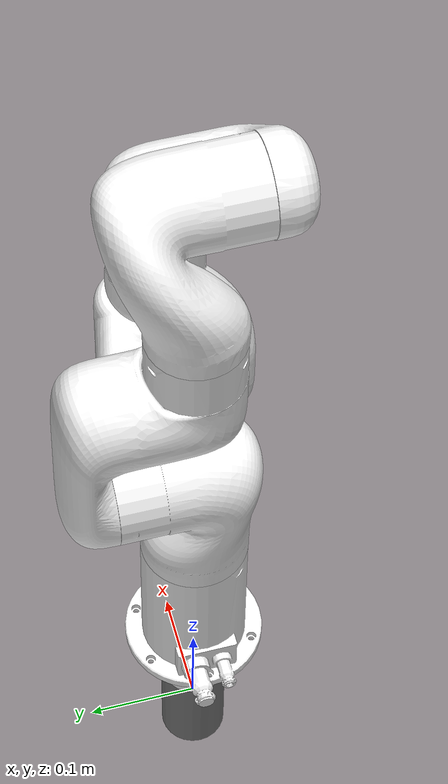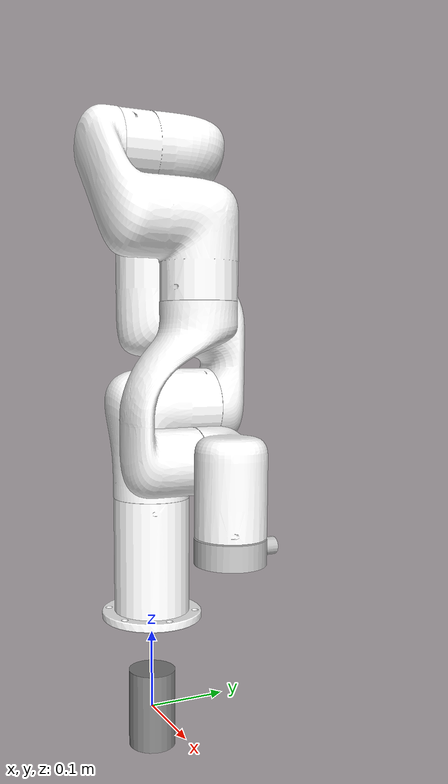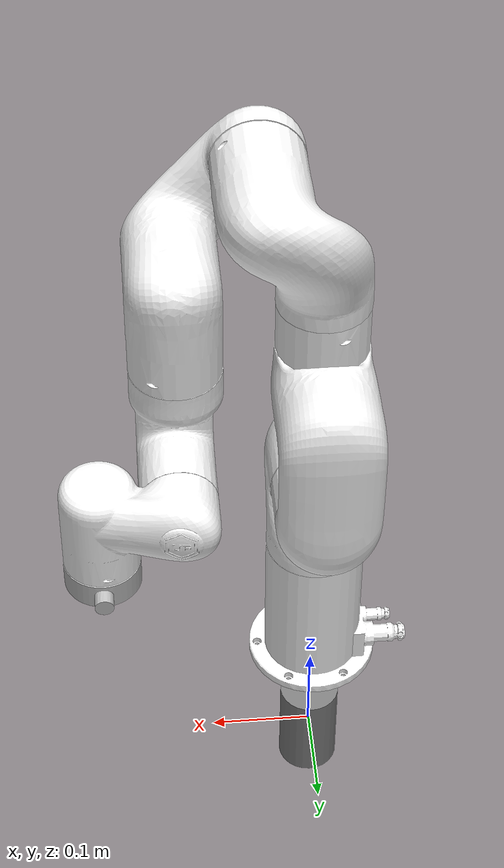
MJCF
<mujoco model="xarm7 nohand">
  <compiler angle="radian" autolimits="true" meshdir="assets"/>

  <option integrator="implicitfast" gravity="0 0 0"/>
  <asset>
    <material name="white" rgba="1 1 1 1"/>
    <material name="gray" rgba="0.753 0.753 0.753 1"/>

    <mesh file="link_base.STL"/>
    <mesh file="link1.STL"/>
    <mesh file="link2.STL"/>
    <mesh file="link3.STL"/>
    <mesh file="link4.STL"/>
    <mesh file="link5.STL"/>
    <mesh file="link6.STL"/>
    <mesh file="link7.STL"/>
    <mesh file="end_tool.STL"/>
  </asset>

  <default>
    <default class="translation">
      <position kp="100" ctrlrange="-.25 .25"/>
    </default>
    <default class="rotation">
      <position kp=".5" ctrlrange="-1.571 1.571"/>
    </default>

    <default class="xarm7">
      <geom type="mesh" material="white"/>
      <joint axis="0 0 1" range="-6.28319 6.28319" frictionloss="1"/>
      <general biastype="affine" ctrlrange="-6.28319 6.28319"/>
      <default class="size1">
        <joint damping="10"/>
        <general gainprm="1500" biasprm="0 -1500 -150" forcerange="-50 50"/>
      </default>
      <default class="size2">
        <joint damping="5"/>
        <general gainprm="1000" biasprm="0 -1000 -100" forcerange="-30 30"/>
      </default>
      <default class="size3">
        <joint damping="2"/>
        <general gainprm="800" biasprm="0 -800 -80" forcerange="-20 20"/>
      </default>
      <site size="0.001" rgba="1 0 0 1" group="4"/>
    </default>
  </default>

  <worldbody>
    <site name="reference" pos="0 0 0.12"/>
    <body name="rigid_body_1">
      <geom type="cylinder" size="0.03 0.05" name="rb1_geom"/>
      <freejoint/>
    </body>

    <body name="link_base" pos="0 0 .12" childclass="xarm7">
      <inertial pos="-0.021131 -0.0016302 0.056488" quat="0.696843 0.20176 0.10388 0.680376" mass="0.88556"
        diaginertia="0.00382023 0.00335282 0.00167725"/>
      <geom mesh="link_base"/>
      <body name="link1" pos="0 0 0.267">
        <inertial pos="-0.0002 0.02905 -0.01233" quat="0.978953 -0.202769 -0.00441617 -0.0227264" mass="2.382"
          diaginertia="0.00569127 0.00533384 0.00293865"/>
        <joint name="joint1" class="size1"/>
        <geom mesh="link1"/>
        <body name="link2" quat="1 -1 0 0">
          <inertial pos="0.00022 -0.12856 0.01735" quat="0.50198 0.86483 -0.00778841 0.00483285" mass="1.869"
            diaginertia="0.00959898 0.00937717 0.00201315"/>
          <joint name="joint2" range="-2.059 2.0944" class="size1"/>
          <geom mesh="link2"/>
          <body name="link3" pos="0 -0.293 0" quat="1 1 0 0">
            <inertial pos="0.0466 -0.02463 -0.00768" quat="0.913819 0.289775 0.281481 -0.0416455" mass="1.6383"
              diaginertia="0.00351721 0.00294089 0.00195868"/>
            <joint name="joint3" class="size2"/>
            <geom mesh="link3"/>
            <body name="link4" pos="0.0525 0 0" quat="1 1 0 0">
              <inertial pos="0.07047 -0.11575 0.012" quat="0.422108 0.852026 -0.126025 0.282832" mass="1.7269"
                diaginertia="0.00657137 0.00647948 0.00186763"/>
              <joint name="joint4" range="-0.19198 3.927" class="size2"/>
              <geom mesh="link4"/>
              <body name="link5" pos="0.0775 -0.3425 0" quat="1 1 0 0">
                <inertial pos="-0.00032 0.01604 -0.026" quat="0.999311 -0.0304457 0.000577067 0.0212082" mass="1.3203"
                  diaginertia="0.00534729 0.00499076 0.0013489"/>
                <joint name="joint5" class="size2"/>
                <geom mesh="link5"/>
                <body name="link6" quat="1 1 0 0">
                  <inertial pos="0.06469 0.03278 0.02141" quat="-0.217672 0.772419 0.16258 0.574069" mass="1.325"
                    diaginertia="0.00245421 0.00221646 0.00107273"/>
                  <joint name="joint6" range="-1.69297 3.14159" class="size3"/>
                  <geom mesh="link6"/>
                  <body name="link7" pos="0.076 0.097 0" quat="1 -1 0 0">
                    <inertial pos="0 -0.00677 -0.01098" quat="0.487612 0.512088 -0.512088 0.487612" mass="0.17"
                      diaginertia="0.000132176 9.3e-05 5.85236e-05"/>
                    <joint name="joint7" class="size3"/>
                    <geom material="gray" mesh="end_tool"/>
                    <site name="attachment_site"/>
                    <site name="end_effector"/>
                  </body>
                </body>
              </body>
            </body>
          </body>
        </body>
      </body>
    </body>
  </worldbody>

  <actuator>
    <position name="x"  site="end_effector" refsite="reference" gear="1 0 0 0 0 0" class="translation"/>
    <position name="y"  site="end_effector" refsite="reference" gear="0 1 0 0 0 0" class="translation"/>
    <position name="z"  site="end_effector" refsite="reference" gear="0 0 1 0 0 0" class="translation"/>
    <position name="rx" site="end_effector" refsite="reference" gear="0 0 0 1 0 0" class="rotation"/>
    <position name="ry" site="end_effector" refsite="reference" gear="0 0 0 0 1 0" class="rotation"/>
    <position name="rz" site="end_effector" refsite="reference" gear="0 0 0 0 0 1" class="rotation"/>
  </actuator>

</mujoco>
